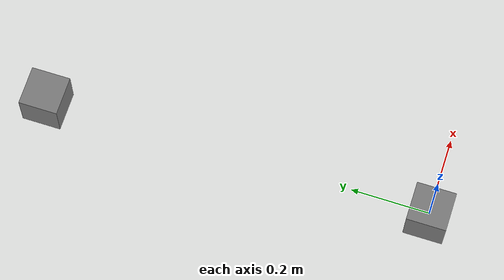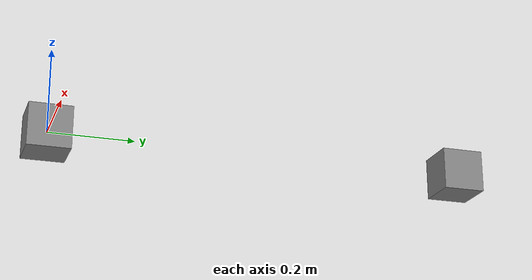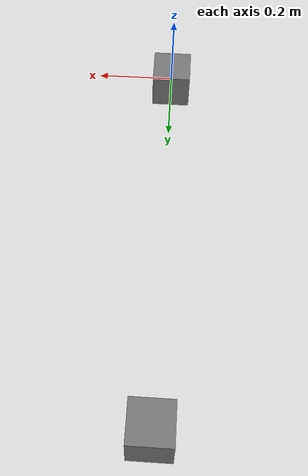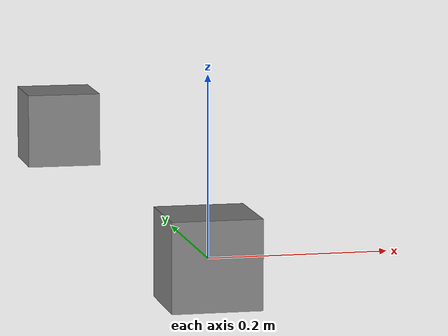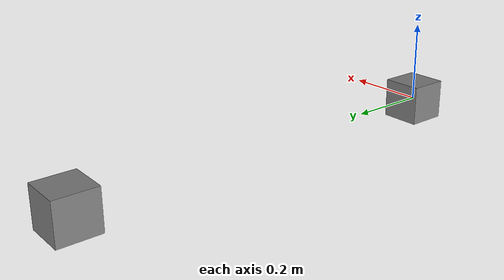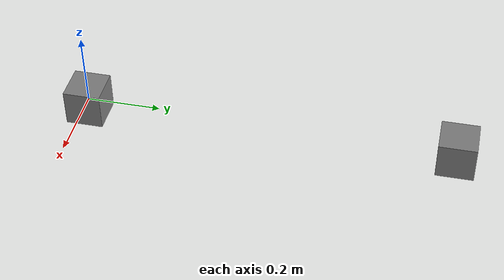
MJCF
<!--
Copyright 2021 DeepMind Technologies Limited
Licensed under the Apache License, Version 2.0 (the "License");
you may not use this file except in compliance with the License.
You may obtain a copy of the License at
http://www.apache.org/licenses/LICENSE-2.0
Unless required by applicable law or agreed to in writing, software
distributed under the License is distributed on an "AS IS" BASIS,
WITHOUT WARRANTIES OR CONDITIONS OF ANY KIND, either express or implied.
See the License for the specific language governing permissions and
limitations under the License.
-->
<mujoco>
  <!--
  the force sensor on body1 should register 2N (for the weight of both bodies).
  body2 is welded to body1 at an offset of 1m, so the torque sensor should register 1Nm.
  -->
  <option gravity="0 0 -1"/>

  <default>
    <!-- A cube of size 0.1^3 with density of 1000 has mass of 1. -->
    <geom size="0.05 0.05 0.05" type="box"/>
  </default>

  <worldbody>
    <body name="body1">
      <geom/>
      <site name="sensor"/>
    </body>
    <body name="body2" pos="0 1 0">
      <joint type="free"/>
      <geom/>
    </body>
  </worldbody>

  <equality>
    <weld body1="body1" body2="body2"/>
  </equality>

  <sensor>
    <force site="sensor" user="0 0 2"/>
    <torque site="sensor" user="1 0 0"/>
  </sensor>
</mujoco>
